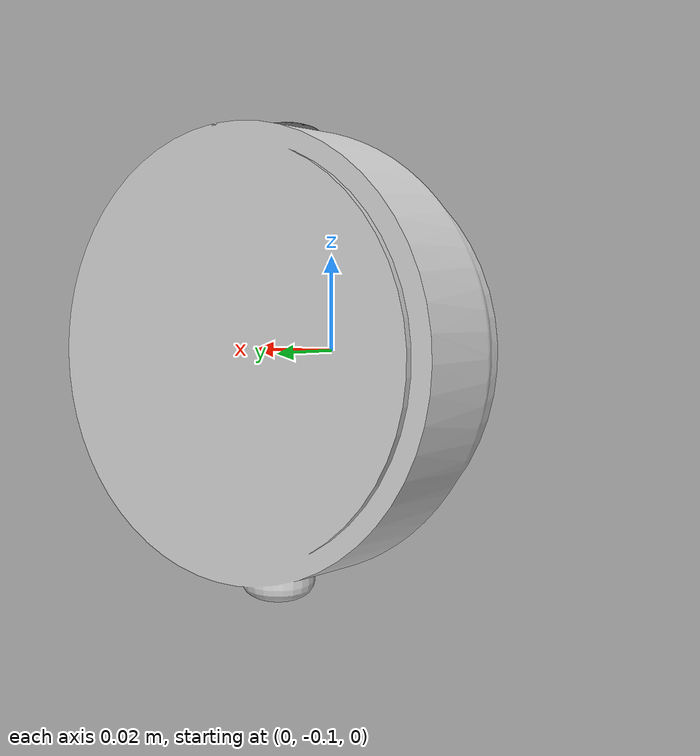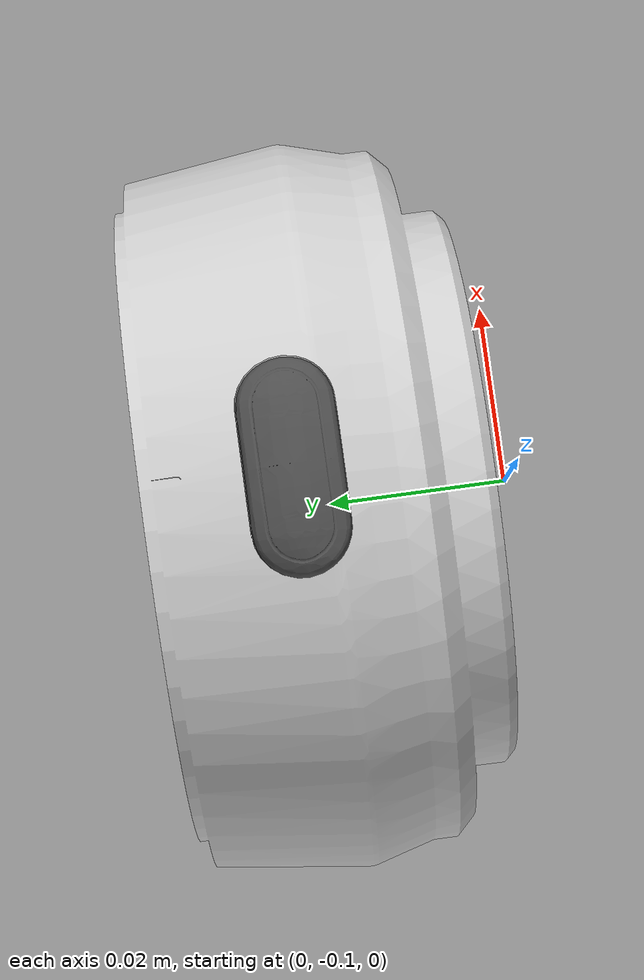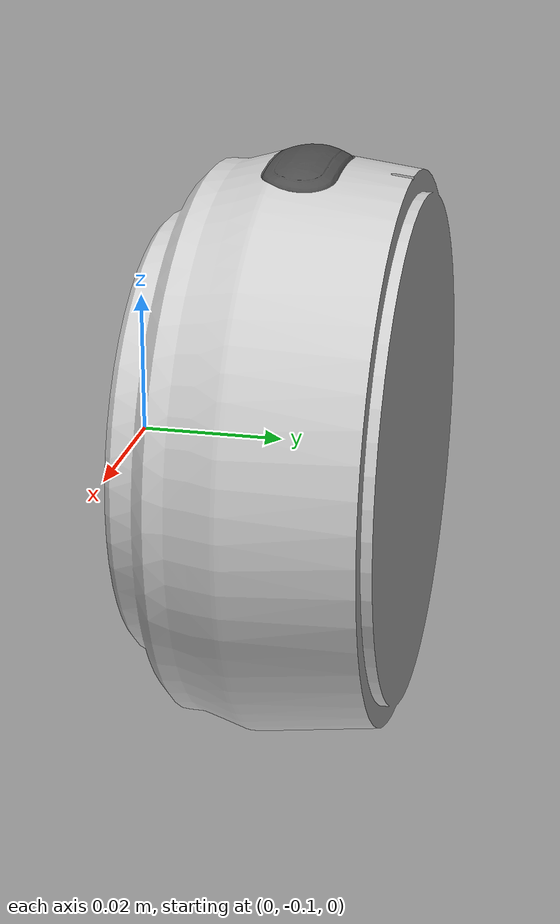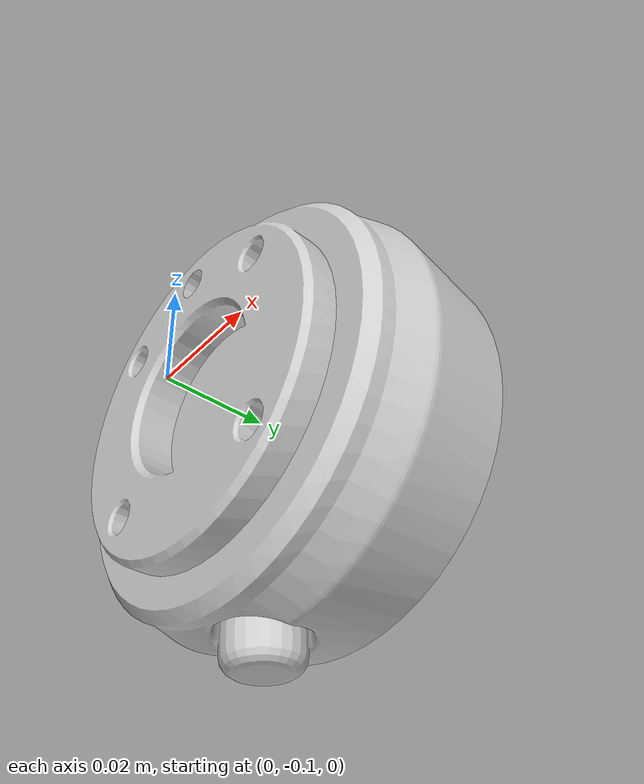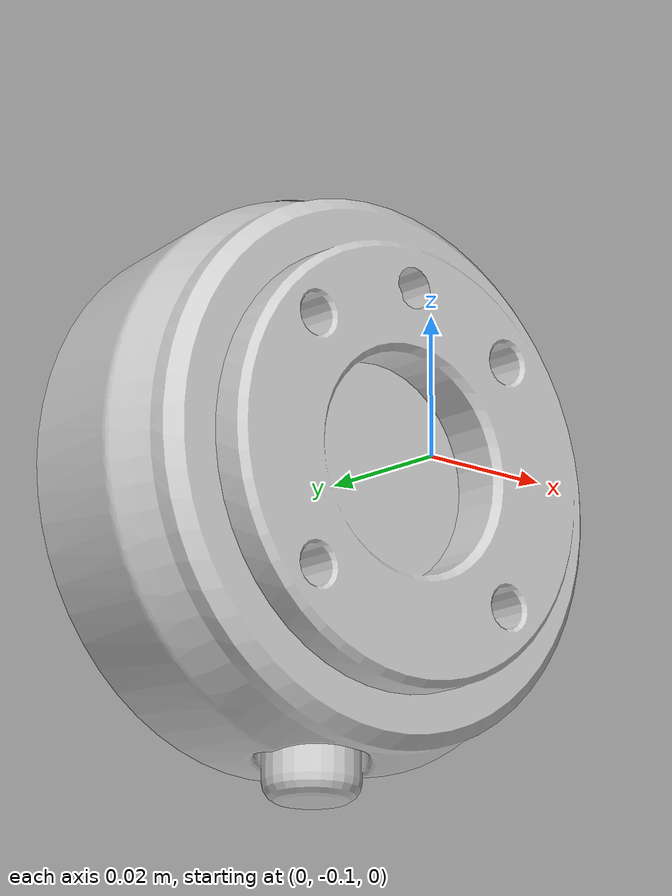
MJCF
<mujoco model="link6">
  <default>
    <default class="visual">
      <geom group="2" type="mesh" contype="0" conaffinity="0"/>
    </default>
    <default class="collision">
      <geom group="3" type="mesh"/>
    </default>
  </default>
  <asset>
    <material name="128,128,128_3" specular="0.5" shininess="0.5" rgba="0.3 0.3 0.3 1"/>
    <material name="254,254,255" specular="0.5" shininess="0.5" rgba="0.8 0.8 0.8 1"/>
    <mesh file="link6_0.obj"/>
    <mesh file="link6_1.obj"/>
  </asset>
  <worldbody>
    <body name="link6">
      <geom mesh="link6_0" material="254,254,255" class="visual"/>
      <geom mesh="link6_1" material="128,128,128_3" class="visual"/>
      <geom mesh="link6_0" class="collision"/>
      <geom mesh="link6_1" class="collision"/>
    </body>
  </worldbody>
</mujoco>
